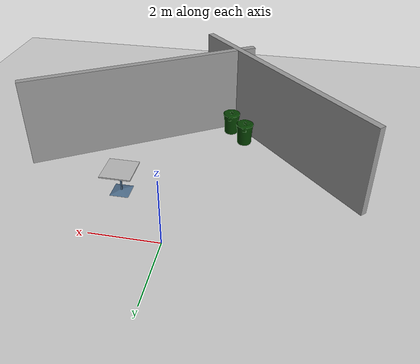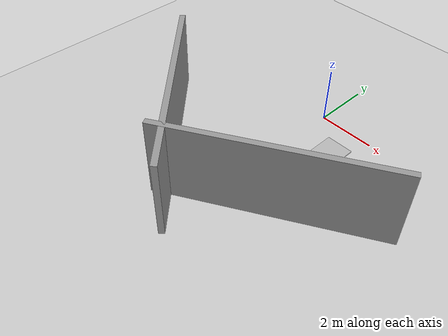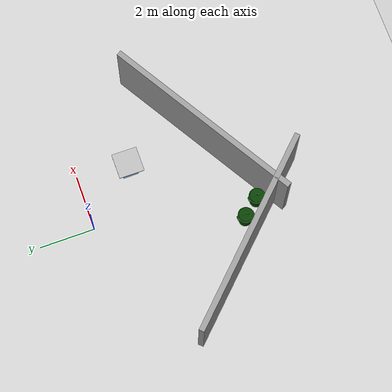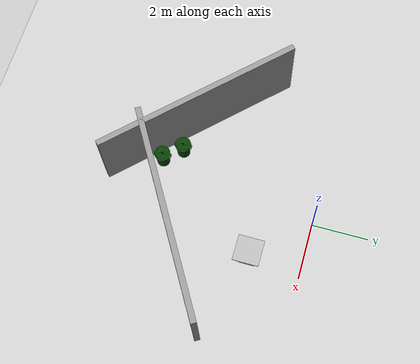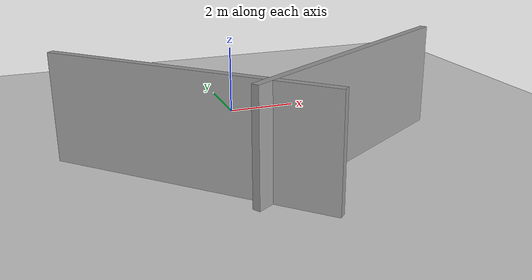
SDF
<sdf version="1.6">
 <world name="default">
  <light name="sun" type="directional">
   <pose>0 0 10 0 -0 0</pose>
   <diffuse>0.8 0.8 0.8 1</diffuse>
   <specular>0.2 0.2 0.2 1</specular>
   <attenuation>
    <range>1000</range>
    <constant>0.9</constant>
    <linear>0.01</linear>
    <quadratic>0.001</quadratic>
   </attenuation>
   <direction>-0.5 0.1 -0.9</direction>
  </light>
  <model name="ground_plane">
   <static>1</static>
   <link name="link">
    <collision name="collision">
     <geometry><plane><normal>0 0 1</normal><size>100 100</size></plane></geometry>
     <surface>
      <contact><collide_bitmask>65535</collide_bitmask></contact>
      <friction><ode><mu>100</mu><mu2>50</mu2></ode></friction>
     </surface>
    </collision>
    <visual name="visual">
     <cast_shadows>0</cast_shadows>
     <geometry><plane><normal>0 0 1</normal><size>100 100</size></plane></geometry>
     <material>
      <script><uri>file://media/materials/scripts/gazebo.material</uri><name>Gazebo/Grey</name></script>
     </material>
    </visual>
   </link>
  </model>
  <physics name="default_physics" default="0" type="ode">
   <real_time_update_rate>1000</real_time_update_rate>
   <max_step_size>0.001</max_step_size>
   <real_time_factor>1</real_time_factor>
   <ode>
    <solver>
     <type>quick</type>
     <iters>150</iters>
     <precon_iters>0</precon_iters>
     <sor>1.4</sor>
     <use_dynamic_moi_rescaling>1</use_dynamic_moi_rescaling>
    </solver>
    <constraints>
     <cfm>1e-05</cfm>
     <erp>0.2</erp>
     <contact_max_correcting_vel>2000</contact_max_correcting_vel>
     <contact_surface_layer>0.01</contact_surface_layer>
    </constraints>
   </ode>
  </physics>
  <scene><ambient>0.4 0.4 0.4 1</ambient><background>0.7 0.7 0.7 1</background><shadows>1</shadows></scene>
  <gravity>0 0 -9.8</gravity>
  <magnetic_field>6e-06 2.3e-05 -4.2e-05</magnetic_field>
  <atmosphere type="adiabatic"/>
  <audio><device>default</device></audio>
  <spherical_coordinates>
   <surface_model>EARTH_WGS84</surface_model>
   <latitude_deg>0</latitude_deg>
   <longitude_deg>0</longitude_deg>
   <elevation>0</elevation>
   <heading_deg>0</heading_deg>
  </spherical_coordinates>
  <model name="grey_wall">
   <static>1</static>
   <link name="link">
    <pose>0 0 1.4 0 -0 0</pose>
    <collision name="collision"><geometry><box><size>7.5 0.2 2.8</size></box></geometry></collision>
    <visual name="visual">
     <cast_shadows>0</cast_shadows>
     <geometry><box><size>7.5 0.2 2.8</size></box></geometry>
     <material>
      <script>
       <uri>model://grey_wall/materials/scripts</uri>
       <uri>model://grey_wall/materials/textures</uri>
       <name>vrc/grey_wall</name>
      </script>
     </material>
    </visual>
   </link>
   <pose>1.71459 -4.65279 0 0 -0 0.540977</pose>
  </model>
  <model name="grey_wall_0">
   <static>1</static>
   <link name="link">
    <pose>0 0 1.4 0 -0 0</pose>
    <collision name="collision"><geometry><box><size>7.5 0.2 2.8</size></box></geometry></collision>
    <visual name="visual">
     <cast_shadows>0</cast_shadows>
     <geometry><box><size>7.5 0.2 2.8</size></box></geometry>
     <material>
      <script>
       <uri>model://grey_wall/materials/scripts</uri>
       <uri>model://grey_wall/materials/textures</uri>
       <name>vrc/grey_wall</name>
      </script>
     </material>
    </visual>
   </link>
   <pose>-2.52099 -4.80805 0 0 0 -0.793783</pose>
  </model>
  <model name="cafe_table_1">
   <static>1</static>
   <link name="link">
    <collision name="surface">
     <pose>0 0 0.755 0 -0 0</pose>
     <geometry><box><size>0.913 0.913 0.04</size></box></geometry>
    </collision>
    <collision name="column">
     <pose>0 0 0.37 0 -0 0</pose>
     <geometry><box><size>0.042 0.042 0.74</size></box></geometry>
    </collision>
    <collision name="base">
     <pose>0 0 0.02 0 -0 0</pose>
     <geometry><box><size>0.56 0.56 0.04</size></box></geometry>
    </collision>
    <visual name="visual">
     <geometry><mesh><uri>model://cafe_table/meshes/cafe_table.dae</uri></mesh></geometry>
    </visual>
   </link>
   <pose>1.696 -1.85864 0 0 -0 0</pose>
  </model>
  <model name="first_2015_trash_can_1">
   <link name="link">
    <inertial>
     <pose>0 0 0.3683 0 -0 0</pose>
     <mass>4.83076</mass>
     <inertia>
      <ixx>0.281534</ixx>
      <ixy>0</ixy>
      <ixz>0</ixz>
      <iyy>0.281534</iyy>
      <iyz>0</iyz>
      <izz>0.126223</izz>
     </inertia>
    </inertial>
    <visual name="visual">
     <geometry><mesh><uri>model://first_2015_trash_can/meshes/trash_can.dae</uri></mesh></geometry>
    </visual>
    <collision name="collision">
     <geometry><mesh><uri>model://first_2015_trash_can/meshes/trash_can.dae</uri></mesh></geometry>
    </collision>
   </link>
   <pose>-0.946401 -5.72551 -4e-06 3e-06 2e-05 -2.9e-05</pose>
  </model>
  <model name="first_2015_trash_can_2">
   <link name="link">
    <inertial>
     <pose>0 0 0.3683 0 -0 0</pose>
     <mass>4.83076</mass>
     <inertia>
      <ixx>0.281534</ixx>
      <ixy>0</ixy>
      <ixz>0</ixz>
      <iyy>0.281534</iyy>
      <iyz>0</iyz>
      <izz>0.126223</izz>
     </inertia>
    </inertial>
    <visual name="visual">
     <geometry><mesh><uri>model://first_2015_trash_can/meshes/trash_can.dae</uri></mesh></geometry>
    </visual>
    <collision name="collision">
     <geometry><mesh><uri>model://first_2015_trash_can/meshes/trash_can.dae</uri></mesh></geometry>
    </collision>
   </link>
   <pose>-1.47098 -5.12319 -4e-06 -3e-06 3e-06 -2.9e-05</pose>
  </model>
 </world>
</sdf>
